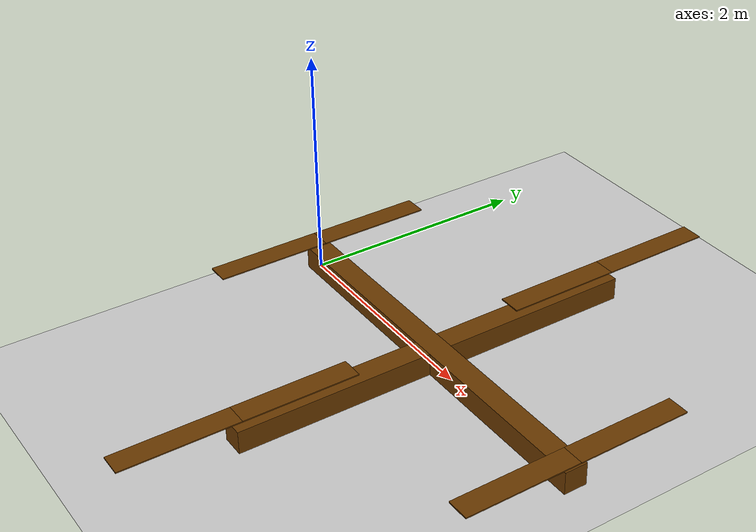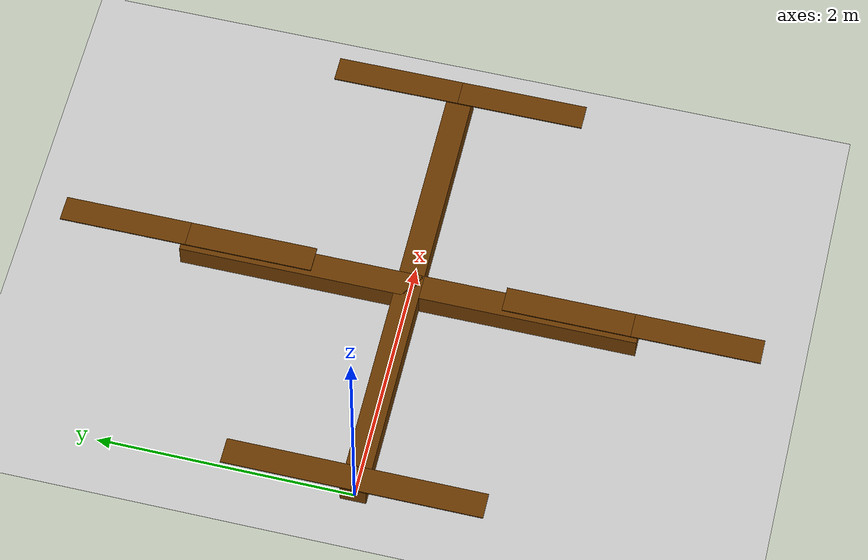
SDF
<?xml version="1.0" ?>
<sdf version="1.4">
  <world name="default">
    <physics type="ode">
      <gravity>0.0 0.0 -10.0</gravity>
      <ode>
        <solver>
          <type>quick</type>
          <iters>50</iters>
          <sor>0.8</sor>
        </solver>
        <constraints>
          <cfm>0.0</cfm>
          <erp>0.2</erp>
          <contact_max_correcting_vel>0.1</contact_max_correcting_vel>
          <contact_surface_layer>0.0</contact_surface_layer>
        </constraints>
      </ode>
      <real_time_update_rate>0</real_time_update_rate>
      <max_step_size>0.001</max_step_size>
    </physics>
    <include>
      <uri>model://sun</uri>
    </include>

    <model name="ground_plane">
      <static>true</static>
      <link name="link">
        <collision name="collision">
          <geometry>
            <plane>
              <normal>0 0 1</normal>
              <size>1000 1000</size>
            </plane>
          </geometry>
          <surface>
            <friction>
              <ode>
                <mu>1</mu>
                <mu2>1</mu2>
              </ode>
            </friction>
          </surface>
        </collision>
        <visual name="visual">
          <cast_shadows>false</cast_shadows>
          <geometry>
            <plane>
              <normal>0 0 1</normal>
              <size>1000 1000</size>
            </plane>
          </geometry>
          <material>
            <script>
              <uri>file://media/materials/scripts/gazebo.material</uri>
              <name>Gazebo/Grey</name>
            </script>
          </material>
        </visual>
      </link>
    </model>

    <model name="lift_drag_demo_model">
      <pose>0 0 0 0 0 0</pose>
      <static>false</static>
      <link name="body_1">
        <pose>1.75 0 0.1 0 0 0</pose>
        <inertial>
          <pose>0.0 0.0 0.0 0.0 0.0 0.0</pose>
          <inertia>
            <ixx>1.8</ixx>
            <ixy>0.0</ixy>
            <ixz>0.0</ixz>
            <iyy>10.8</iyy>
            <iyz>0.0</iyz>
            <izz>10.8</izz>
          </inertia>
          <mass>10.0</mass>
        </inertial>
        <collision name="collision">
          <geometry>
            <box>
              <size>3.6 0.2 0.2</size>
            </box>
          </geometry>
          <surface>
            <friction>
              <ode>
                <mu>0.1</mu>
                <mu2>0.1</mu2>
              </ode>
            </friction>
          </surface>
        </collision>
        <visual name="visual">
          <geometry>
            <box>
              <size>3.6 0.2 0.2</size>
            </box>
          </geometry>
          <material>
            <ambient>0.2 0.2 0.2 1.0</ambient>
            <diffuse>.421 0.225 0.0 1.0</diffuse>
          </material>
        </visual>
        <sensor name='imu_sensor' type='imu'>
          <always_on>1</always_on>
          <update_rate>1000</update_rate>
          <imu>
            <angular_velocity>
              <x>
                <noise type="gaussian">
                 <mean>0</mean>
                 <stddev>0.0002</stddev>
                 <bias_mean>7.5e-06</bias_mean>
                 <bias_stddev>8e-07</bias_stddev>
                </noise>
              </x>
              <y>
                <noise type="gaussian">
                 <mean>0</mean>
                 <stddev>0.0002</stddev>
                 <bias_mean>7.5e-06</bias_mean>
                 <bias_stddev>8e-07</bias_stddev>
                </noise>
              </y>
              <z>
                <noise type="gaussian">
                 <mean>0</mean>
                 <stddev>0.0002</stddev>
                 <bias_mean>7.5e-06</bias_mean>
                 <bias_stddev>8e-07</bias_stddev>
                </noise>
              </z>
            </angular_velocity>

            <linear_acceleration>
              <x>
                <noise type="gaussian">
                  <mean>0</mean>
                  <stddev>0.017</stddev>
                  <bias_mean>0.1</bias_mean>
                  <bias_stddev>0.001</bias_stddev>
                </noise>
              </x>
              <y>
                <noise type="gaussian">
                  <mean>0</mean>
                  <stddev>0.017</stddev>
                  <bias_mean>0.1</bias_mean>
                  <bias_stddev>0.001</bias_stddev>
                </noise>
              </y>
              <z>
                <noise type="gaussian">
                  <mean>0</mean>
                  <stddev>0.017</stddev>
                  <bias_mean>0.1</bias_mean>
                  <bias_stddev>0.001</bias_stddev>
                </noise>
              </z>
            </linear_acceleration>
          </imu>
          <pose>0 0 0 0 0 0</pose>
        </sensor>
      </link>
      <link name="rod_1">
        <pose>0 0 0.24 0 0 0</pose>
        <inertial>
          <pose>0.0 0.0 0 0.0 0.0 0.0</pose>
          <inertia>
            <ixx>0.012</ixx>
            <ixy>0.0</ixy>
            <ixz>0.0</ixz>
            <iyy>0.012</iyy>
            <iyz>0.0</iyz>
            <izz>0.0012</izz>
          </inertia>
          <mass>1.0</mass>
        </inertial>
        <collision name="collision">
          <geometry>
            <box>
              <size>0.02 0.02 0.08</size>
            </box>
          </geometry>
        </collision>
        <visual name="visual">
          <geometry>
            <box>
              <size>0.02 0.02 0.08</size>
            </box>
          </geometry>
          <material>
            <ambient>0.3 0.3 0.3 1.0</ambient>
            <diffuse>.421 0.225 0.0 1.0</diffuse>
          </material>
        </visual>
      </link>
      <link name="blade_1">
        <pose>0 0 0.28 0 0 0</pose>
        <inertial>
          <pose>0.0 0.25 0 0.0 0.0 0.0</pose>
          <inertia>
            <ixx>0.0000465</ixx>
            <ixy>0.0</ixy>
            <ixz>0.0</ixz>
            <iyy>0.0000006</iyy>
            <iyz>0.0</iyz>
            <izz>0.0000470</izz>
          </inertia>
          <mass>0.01</mass>
        </inertial>
        <collision name="collision">
          <pose>0.0 0.5 0 0.0 0.0 0.0</pose>
          <geometry>
            <box>
              <size>0.2 1.0 0.01</size>
            </box>
          </geometry>
        </collision>
        <visual name="visual">
          <pose>0.0 0.5 0 0.0 0.0 0.0</pose>
          <geometry>
            <box>
              <size>0.2 1.0 0.01</size>
            </box>
          </geometry>
          <material>
            <ambient>0.5 0.2 0.2 1.0</ambient>
            <diffuse>.421 0.225 0.0 1.0</diffuse>
          </material>
        </visual>
      </link>
      <link name="blade_2">
        <pose>0 0 0.28 0 0 3.141593</pose>
        <inertial>
          <pose>0.0 0.25 0 0.0 0.0 0.0</pose>
          <inertia>
            <ixx>0.0000465</ixx>
            <ixy>0.0</ixy>
            <ixz>0.0</ixz>
            <iyy>0.0000006</iyy>
            <iyz>0.0</iyz>
            <izz>0.0000470</izz>
          </inertia>
          <mass>0.01</mass>
        </inertial>
        <collision name="collision">
          <pose>0.0 0.5 0 0.0 0.0 0.0</pose>
          <geometry>
            <box>
              <size>0.2 1.0 0.01</size>
            </box>
          </geometry>
        </collision>
        <visual name="visual">
          <pose>0.0 0.5 0 0.0 0.0 0</pose>
          <geometry>
            <box>
              <size>0.2 1.0 0.01</size>
            </box>
          </geometry>
          <material>
            <ambient>0.2 0.5 0.2 1.0</ambient>
            <diffuse>.421 0.225 0.0 1.0</diffuse>
          </material>
        </visual>
      </link>
      <joint name="rod_1_joint" type="revolute">
        <parent>body_1</parent>
        <child>rod_1</child>
        <pose>0.0 0.0 0.0 0.0 0.0 0.0</pose>
        <axis>
          <limit>
            <lower>-1e16</lower>
            <upper>1e16</upper>
          </limit>
          <xyz>0.0 0.0 -1.0</xyz>
          <dynamics>
            <damping>0.0001</damping>
          </dynamics>
        </axis>
        <physics>
          <ode>
            <cfm_damping>1</cfm_damping>
          </ode>
        </physics>
      </joint>
      <joint name="blade_1_joint" type="revolute">
        <parent>rod_1</parent>
        <child>blade_1</child>
        <pose>0.0 0.0 0.0 0.0 0.0 0.0</pose>
        <axis>
          <limit>
            <lower>-0.0</lower>
            <upper>0.0</upper>
          </limit>
          <xyz>1.0 0.0 0.0</xyz>
          <dynamics>
            <damping>1.000000</damping>
          </dynamics>
        </axis>
        <physics>
          <ode>
            <limit>
              <cfm>0.004</cfm>
              <erp>0.2</erp>
            </limit>
            <cfm_damping>1</cfm_damping>
          </ode>
        </physics>
      </joint>
      <joint name="blade_2_joint" type="revolute">
        <parent>rod_1</parent>
        <child>blade_2</child>
        <pose>0.0 0.0 0.0 0.0 0.0 0.0</pose>
        <axis>
          <limit>
            <lower>-0.0</lower>
            <upper>0.0</upper>
          </limit>
          <xyz>-1.0 0.0 0.0</xyz>
          <dynamics>
            <damping>1.000000</damping>
          </dynamics>
        </axis>
        <physics>
          <ode>
            <limit>
              <cfm>0.004</cfm>
              <erp>0.2</erp>
            </limit>
            <cfm_damping>1</cfm_damping>
          </ode>
        </physics>
      </joint>

      <link name="rod_2">
        <pose>3.5 0 0.24 0 0 0</pose>
        <inertial>
          <pose>0.0 0.0 0 0.0 0.0 0.0</pose>
          <inertia>
            <ixx>0.012</ixx>
            <ixy>0.0</ixy>
            <ixz>0.0</ixz>
            <iyy>0.012</iyy>
            <iyz>0.0</iyz>
            <izz>0.0012</izz>
          </inertia>
          <mass>1.0</mass>
        </inertial>
        <collision name="collision">
          <geometry>
            <box>
              <size>0.02 0.02 0.08</size>
            </box>
          </geometry>
        </collision>
        <visual name="visual">
          <geometry>
            <box>
              <size>0.02 0.02 0.08</size>
            </box>
          </geometry>
          <material>
            <ambient>0.3 0.3 0.3 1.0</ambient>
            <diffuse>.421 0.225 0.0 1.0</diffuse>
          </material>
        </visual>
      </link>
      <link name="blade_3">
        <pose>3.5 0 0.28 0 0 0</pose>
        <inertial>
          <pose>0.0 0.25 0 0.0 0.0 0.0</pose>
          <inertia>
            <ixx>0.0000465</ixx>
            <ixy>0.0</ixy>
            <ixz>0.0</ixz>
            <iyy>0.0000006</iyy>
            <iyz>0.0</iyz>
            <izz>0.0000470</izz>
          </inertia>
          <mass>0.01</mass>
        </inertial>
        <collision name="collision">
          <pose>0.0 0.5 0 0.0 0.0 0.0</pose>
          <geometry>
            <box>
              <size>0.2 1.0 0.01</size>
            </box>
          </geometry>
        </collision>
        <visual name="visual">
          <pose>0.0 0.5 0 0.0 0.0 0.0</pose>
          <geometry>
            <box>
              <size>0.2 1.0 0.01</size>
            </box>
          </geometry>
          <material>
            <ambient>0.5 0.2 0.2 1.0</ambient>
            <diffuse>.421 0.225 0.0 1.0</diffuse>
          </material>
        </visual>
      </link>
      <link name="blade_4">
        <pose>3.5 0 0.28 0 0 3.141593</pose>
        <inertial>
          <pose>0.0 0.25 0 0.0 0.0 0.0</pose>
          <inertia>
            <ixx>0.0000465</ixx>
            <ixy>0.0</ixy>
            <ixz>0.0</ixz>
            <iyy>0.0000006</iyy>
            <iyz>0.0</iyz>
            <izz>0.0000470</izz>
          </inertia>
          <mass>0.01</mass>
        </inertial>
        <collision name="collision">
          <pose>0.0 0.5 0 0.0 0.0 0.0</pose>
          <geometry>
            <box>
              <size>0.2 1.0 0.01</size>
            </box>
          </geometry>
        </collision>
        <visual name="visual">
          <pose>0.0 0.5 0 0.0 0.0 0</pose>
          <geometry>
            <box>
              <size>0.2 1.0 0.01</size>
            </box>
          </geometry>
          <material>
            <ambient>0.2 0.5 0.2 1.0</ambient>
            <diffuse>.421 0.225 0.0 1.0</diffuse>
          </material>
        </visual>
      </link>
      <joint name="rod_2_joint" type="revolute">
        <parent>body_1</parent>
        <child>rod_2</child>
        <pose>0.0 0.0 0.0 0.0 0.0 0.0</pose>
        <axis>
          <limit>
            <lower>-1e16</lower>
            <upper>1e16</upper>
          </limit>
          <xyz>0.0 0.0 1.0</xyz>
          <dynamics>
            <damping>0.0001</damping>
          </dynamics>
        </axis>
        <physics>
          <ode>
            <cfm_damping>1</cfm_damping>
          </ode>
        </physics>
      </joint>
      <joint name="blade_3_joint" type="revolute">
        <parent>rod_2</parent>
        <child>blade_3</child>
        <pose>0.0 0.0 0.0 0.0 0.0 0.0</pose>
        <axis>
          <limit>
            <lower>-0.0</lower>
            <upper>0.0</upper>
          </limit>
          <xyz>1.0 0.0 0.0</xyz>
          <dynamics>
            <damping>1.000000</damping>
          </dynamics>
        </axis>
        <physics>
          <ode>
            <limit>
              <cfm>0.004</cfm>
              <erp>0.2</erp>
            </limit>
            <cfm_damping>1</cfm_damping>
          </ode>
        </physics>
      </joint>
      <joint name="blade_4_joint" type="revolute">
        <parent>rod_2</parent>
        <child>blade_4</child>
        <pose>0.0 0.0 0.0 0.0 0.0 0.0</pose>
        <axis>
          <limit>
            <lower>-0.0</lower>
            <upper>0.0</upper>
          </limit>
          <xyz>1.0 0.0 0.0</xyz>
          <dynamics>
            <damping>1.000000</damping>
          </dynamics>
        </axis>
        <physics>
          <ode>
            <limit>
              <cfm>0.004</cfm>
              <erp>0.2</erp>
            </limit>
            <cfm_damping>1</cfm_damping>
          </ode>
        </physics>
      </joint>
      <joint name="gear_joint_1" type="gearbox">
          <parent>rod_1</parent>
          <child>rod_2</child>
          <gearbox_ratio>1.0</gearbox_ratio>
          <gearbox_reference_body>body_1</gearbox_reference_body>
          <axis>
            <xyz>0.000000 0.000000 1.000000</xyz>
          </axis>
          <axis2>
            <xyz>0.000000 0.000000 1.000000</xyz>
          </axis2>
      </joint>

      <plugin name="gazebo_blade_1" filename="libLiftDragPlugin.so">
        <a0>0.1</a0>
        <cla>0.100</cla>
        <cda>0.01</cda>
        <cma>0.00</cma>
        <alpha_stall>0.2</alpha_stall>
        <cla_stall>-0.2</cla_stall>
        <cda_stall>1.0</cda_stall>
        <cma_stall>0.0</cma_stall>
        <cp>0.0 0.5 0</cp>
        <area>0.2</area>
        <air_density>1.2041</air_density>
        <forward>1 0 0</forward>
        <upward>0 0 1</upward>
        <link_name>lift_drag_demo_model::blade_1</link_name>
      </plugin>
      <plugin name="gazebo_blade_2" filename="libLiftDragPlugin.so">
        <a0>0.1</a0>
        <cla>0.100</cla>
        <cda>0.01</cda>
        <cma>0.00</cma>
        <alpha_stall>0.2</alpha_stall>
        <cla_stall>-0.2</cla_stall>
        <cda_stall>1.0</cda_stall>
        <cma_stall>0.0</cma_stall>
        <cp>0.0 0.5 0</cp>
        <area>0.2</area>
        <air_density>1.2041</air_density>
        <forward>1 0 0</forward>
        <upward>0 0 1</upward>
        <link_name>lift_drag_demo_model::blade_2</link_name>
      </plugin>
      <plugin name="gazebo_blade_3" filename="libLiftDragPlugin.so">
        <a0>0.1</a0>
        <cla>0.100</cla>
        <cda>0.01</cda>
        <cma>0.00</cma>
        <alpha_stall>0.2</alpha_stall>
        <cla_stall>-0.2</cla_stall>
        <cda_stall>1.0</cda_stall>
        <cma_stall>0.0</cma_stall>
        <cp>0.0 0.5 0</cp>
        <area>0.2</area>
        <air_density>1.2041</air_density>
        <forward>-1 0 0</forward>
        <upward>0 0 1</upward>
        <link_name>lift_drag_demo_model::blade_3</link_name>
      </plugin>
      <plugin name="gazebo_blade_4" filename="libLiftDragPlugin.so">
        <a0>0.1</a0>
        <cla>0.100</cla>
        <cda>0.01</cda>
        <cma>0.00</cma>
        <alpha_stall>0.2</alpha_stall>
        <cla_stall>-0.2</cla_stall>
        <cda_stall>1.0</cda_stall>
        <cma_stall>0.0</cma_stall>
        <cp>0.0 0.5 0</cp>
        <area>0.2</area>
        <air_density>1.2041</air_density>
        <forward>-1 0 0</forward>
        <upward>0 0 1</upward>
        <link_name>lift_drag_demo_model::blade_4</link_name>
      </plugin>

      <link name="body_2">
        <pose>1.75 0 0.1 0 0 0</pose>
        <inertial>
          <pose>0.0 0.0 0.0 0.0 0.0 0.0</pose>
          <inertia>
            <ixx>10.8</ixx>
            <ixy>0.0</ixy>
            <ixz>0.0</ixz>
            <iyy>1.8</iyy>
            <iyz>0.0</iyz>
            <izz>10.8</izz>
          </inertia>
          <mass>10.0</mass>
        </inertial>
        <collision name="collision">
          <geometry>
            <box>
              <size>0.2 3.6 0.2</size>
            </box>
          </geometry>
          <surface>
            <friction>
              <ode>
                <mu>0.1</mu>
                <mu2>0.1</mu2>
              </ode>
            </friction>
          </surface>
        </collision>
        <visual name="visual">
          <geometry>
            <box>
              <size>0.2 3.6 0.2</size>
            </box>
          </geometry>
          <material>
            <ambient>0.2 0.2 0.2 1.0</ambient>
            <diffuse>.421 0.225 0.0 1.0</diffuse>
          </material>
        </visual>
      </link>
      <link name="rod_3">
        <pose>1.75 -1.75 0.24 0 0 0</pose>
        <inertial>
          <pose>0.0 0.0 0 0.0 0.0 0.0</pose>
          <inertia>
            <ixx>0.012</ixx>
            <ixy>0.0</ixy>
            <ixz>0.0</ixz>
            <iyy>0.012</iyy>
            <iyz>0.0</iyz>
            <izz>0.0012</izz>
          </inertia>
          <mass>1.0</mass>
        </inertial>
        <collision name="collision">
          <geometry>
            <box>
              <size>0.02 0.02 0.08</size>
            </box>
          </geometry>
        </collision>
        <visual name="visual">
          <geometry>
            <box>
              <size>0.02 0.02 0.08</size>
            </box>
          </geometry>
          <material>
            <ambient>0.3 0.3 0.3 1.0</ambient>
            <diffuse>.421 0.225 0.0 1.0</diffuse>
          </material>
        </visual>
      </link>
      <link name="blade_5">
        <pose>1.75 -1.75 0.28 0 0 0</pose>
        <inertial>
          <pose>0.0 0.25 0 0.0 0.0 0.0</pose>
          <inertia>
            <ixx>0.0000465</ixx>
            <ixy>0.0</ixy>
            <ixz>0.0</ixz>
            <iyy>0.0000006</iyy>
            <iyz>0.0</iyz>
            <izz>0.0000470</izz>
          </inertia>
          <mass>0.01</mass>
        </inertial>
        <collision name="collision">
          <pose>0.0 0.5 0 0.0 0.0 0.0</pose>
          <geometry>
            <box>
              <size>0.2 1.0 0.01</size>
            </box>
          </geometry>
        </collision>
        <visual name="visual">
          <pose>0.0 0.5 0 0.0 0.0 0.0</pose>
          <geometry>
            <box>
              <size>0.2 1.0 0.01</size>
            </box>
          </geometry>
          <material>
            <ambient>0.5 0.2 0.2 1.0</ambient>
            <diffuse>.421 0.225 0.0 1.0</diffuse>
          </material>
        </visual>
      </link>
      <link name="blade_6">
        <pose>1.75 -1.75 0.28 0 0 3.141593</pose>
        <inertial>
          <pose>0.0 0.25 0 0.0 0.0 0.0</pose>
          <inertia>
            <ixx>0.0000465</ixx>
            <ixy>0.0</ixy>
            <ixz>0.0</ixz>
            <iyy>0.0000006</iyy>
            <iyz>0.0</iyz>
            <izz>0.0000470</izz>
          </inertia>
          <mass>0.01</mass>
        </inertial>
        <collision name="collision">
          <pose>0.0 0.5 0 0.0 0.0 0.0</pose>
          <geometry>
            <box>
              <size>0.2 1.0 0.01</size>
            </box>
          </geometry>
        </collision>
        <visual name="visual">
          <pose>0.0 0.5 0 0.0 0.0 0</pose>
          <geometry>
            <box>
              <size>0.2 1.0 0.01</size>
            </box>
          </geometry>
          <material>
            <ambient>0.2 0.5 0.2 1.0</ambient>
            <diffuse>.421 0.225 0.0 1.0</diffuse>
          </material>
        </visual>
      </link>
      <joint name="rod_3_joint" type="revolute">
        <parent>body_2</parent>
        <child>rod_3</child>
        <pose>0.0 0.0 0.0 0.0 0.0 0.0</pose>
        <axis>
          <limit>
            <lower>-1e16</lower>
            <upper>1e16</upper>
          </limit>
          <xyz>0.0 0.0 1.0</xyz>
          <dynamics>
            <damping>0.0001</damping>
          </dynamics>
        </axis>
        <physics>
          <ode>
            <cfm_damping>1</cfm_damping>
          </ode>
        </physics>
      </joint>
      <joint name="blade_5_joint" type="revolute">
        <parent>rod_3</parent>
        <child>blade_5</child>
        <pose>0.0 0.0 0.0 0.0 0.0 0.0</pose>
        <axis>
          <limit>
            <lower>-0.0</lower>
            <upper>0.0</upper>
          </limit>
          <xyz>1.0 0.0 0.0</xyz>
          <dynamics>
            <damping>1.000000</damping>
          </dynamics>
        </axis>
        <physics>
          <ode>
            <limit>
              <cfm>0.004</cfm>
              <erp>0.2</erp>
            </limit>
            <cfm_damping>1</cfm_damping>
          </ode>
        </physics>
      </joint>
      <joint name="blade_6_joint" type="revolute">
        <parent>rod_3</parent>
        <child>blade_6</child>
        <pose>0.0 0.0 0.0 0.0 0.0 0.0</pose>
        <axis>
          <limit>
            <lower>-0.0</lower>
            <upper>0.0</upper>
          </limit>
          <xyz>-1.0 0.0 0.0</xyz>
          <dynamics>
            <damping>1.000000</damping>
          </dynamics>
        </axis>
        <physics>
          <ode>
            <limit>
              <cfm>0.004</cfm>
              <erp>0.2</erp>
            </limit>
            <cfm_damping>1</cfm_damping>
          </ode>
        </physics>
      </joint>

      <link name="rod_4">
        <pose>1.75 1.75 0.24 0 0 0</pose>
        <inertial>
          <pose>0.0 0.0 0 0.0 0.0 0.0</pose>
          <inertia>
            <ixx>0.012</ixx>
            <ixy>0.0</ixy>
            <ixz>0.0</ixz>
            <iyy>0.012</iyy>
            <iyz>0.0</iyz>
            <izz>0.0012</izz>
          </inertia>
          <mass>1.0</mass>
        </inertial>
        <collision name="collision">
          <geometry>
            <box>
              <size>0.02 0.02 0.08</size>
            </box>
          </geometry>
        </collision>
        <visual name="visual">
          <geometry>
            <box>
              <size>0.02 0.02 0.08</size>
            </box>
          </geometry>
          <material>
            <ambient>0.3 0.3 0.3 1.0</ambient>
            <diffuse>.421 0.225 0.0 1.0</diffuse>
          </material>
        </visual>
      </link>
      <link name="blade_7">
        <pose>1.75 1.75 0.28 0 0 0</pose>
        <inertial>
          <pose>0.0 0.25 0 0.0 0.0 0.0</pose>
          <inertia>
            <ixx>0.0000465</ixx>
            <ixy>0.0</ixy>
            <ixz>0.0</ixz>
            <iyy>0.0000006</iyy>
            <iyz>0.0</iyz>
            <izz>0.0000470</izz>
          </inertia>
          <mass>0.01</mass>
        </inertial>
        <collision name="collision">
          <pose>0.0 0.5 0 0.0 0.0 0.0</pose>
          <geometry>
            <box>
              <size>0.2 1.0 0.01</size>
            </box>
          </geometry>
        </collision>
        <visual name="visual">
          <pose>0.0 0.5 0 0.0 0.0 0.0</pose>
          <geometry>
            <box>
              <size>0.2 1.0 0.01</size>
            </box>
          </geometry>
          <material>
            <ambient>0.5 0.2 0.2 1.0</ambient>
            <diffuse>.421 0.225 0.0 1.0</diffuse>
          </material>
        </visual>
      </link>
      <link name="blade_8">
        <pose>1.75 1.75 0.28 0 0 3.141593</pose>
        <inertial>
          <pose>0.0 0.25 0 0.0 0.0 0.0</pose>
          <inertia>
            <ixx>0.0000465</ixx>
            <ixy>0.0</ixy>
            <ixz>0.0</ixz>
            <iyy>0.0000006</iyy>
            <iyz>0.0</iyz>
            <izz>0.0000470</izz>
          </inertia>
          <mass>0.01</mass>
        </inertial>
        <collision name="collision">
          <pose>0.0 0.5 0 0.0 0.0 0.0</pose>
          <geometry>
            <box>
              <size>0.2 1.0 0.01</size>
            </box>
          </geometry>
        </collision>
        <visual name="visual">
          <pose>0.0 0.5 0 0.0 0.0 0</pose>
          <geometry>
            <box>
              <size>0.2 1.0 0.01</size>
            </box>
          </geometry>
          <material>
            <ambient>0.2 0.5 0.2 1.0</ambient>
            <diffuse>.421 0.225 0.0 1.0</diffuse>
          </material>
        </visual>
      </link>
      <joint name="body_joint" type="revolute">
        <parent>body_1</parent>
        <child>body_2</child>
        <pose>0.0 0.0 0.0 0.0 0.0 0.0</pose>
        <axis>
          <limit>
            <lower>0</lower>
            <upper>0</upper>
          </limit>
          <xyz>0.0 0.0 1.0</xyz>
          <dynamics>
            <damping>0.0001</damping>
          </dynamics>
        </axis>
        <physics>
          <ode>
            <cfm_damping>1</cfm_damping>
          </ode>
        </physics>
      </joint>
      <joint name="rod_4_joint" type="revolute">
        <parent>body_2</parent>
        <child>rod_4</child>
        <pose>0.0 0.0 0.0 0.0 0.0 0.0</pose>
        <axis>
          <limit>
            <lower>-1e16</lower>
            <upper>1e16</upper>
          </limit>
          <xyz>0.0 0.0 1.0</xyz>
          <dynamics>
            <damping>0.0001</damping>
          </dynamics>
        </axis>
        <physics>
          <ode>
            <cfm_damping>1</cfm_damping>
          </ode>
        </physics>
      </joint>
      <joint name="blade_7_joint" type="revolute">
        <parent>rod_4</parent>
        <child>blade_7</child>
        <pose>0.0 0.0 0.0 0.0 0.0 0.0</pose>
        <axis>
          <limit>
            <lower>-0.0</lower>
            <upper>0.0</upper>
          </limit>
          <xyz>1.0 0.0 0.0</xyz>
          <dynamics>
            <damping>1.000000</damping>
          </dynamics>
        </axis>
        <physics>
          <ode>
            <limit>
              <cfm>0.004</cfm>
              <erp>0.2</erp>
            </limit>
            <cfm_damping>1</cfm_damping>
          </ode>
        </physics>
      </joint>
      <joint name="blade_8_joint" type="revolute">
        <parent>rod_4</parent>
        <child>blade_8</child>
        <pose>0.0 0.0 0.0 0.0 0.0 0.0</pose>
        <axis>
          <limit>
            <lower>-0.0</lower>
            <upper>0.0</upper>
          </limit>
          <xyz>-1.0 0.0 0.0</xyz>
          <dynamics>
            <damping>1.000000</damping>
          </dynamics>
        </axis>
        <physics>
          <ode>
            <limit>
              <cfm>0.004</cfm>
              <erp>0.2</erp>
            </limit>
            <cfm_damping>1</cfm_damping>
          </ode>
        </physics>
      </joint>
      <joint name="gear_joint_2" type="gearbox">
          <parent>rod_3</parent>
          <child>rod_4</child>
          <gearbox_ratio>-1.0</gearbox_ratio>
          <gearbox_reference_body>body_2</gearbox_reference_body>
          <axis>
            <xyz>0.000000 0.000000 1.000000</xyz>
          </axis>
          <axis2>
            <xyz>0.000000 0.000000 1.000000</xyz>
          </axis2>
      </joint>

      <plugin name="gazebo_blade_5" filename="libLiftDragPlugin.so">
        <a0>0.1</a0>
        <cla>0.100</cla>
        <cda>0.01</cda>
        <cma>0.00</cma>
        <alpha_stall>0.2</alpha_stall>
        <cla_stall>-0.2</cla_stall>
        <cda_stall>1.0</cda_stall>
        <cma_stall>0.0</cma_stall>
        <cp>0.0 0.5 0</cp>
        <area>0.2</area>
        <air_density>1.2041</air_density>
        <forward>-1 0 0</forward>
        <upward>0 0 1</upward>
        <link_name>lift_drag_demo_model::blade_5</link_name>
      </plugin>
      <plugin name="gazebo_blade_6" filename="libLiftDragPlugin.so">
        <a0>0.1</a0>
        <cla>0.100</cla>
        <cda>0.01</cda>
        <cma>0.00</cma>
        <alpha_stall>0.2</alpha_stall>
        <cla_stall>-0.2</cla_stall>
        <cda_stall>1.0</cda_stall>
        <cma_stall>0.0</cma_stall>
        <cp>0.0 0.5 0</cp>
        <area>0.2</area>
        <air_density>1.2041</air_density>
        <forward>-1 0 0</forward>
        <upward>0 0 1</upward>
        <link_name>lift_drag_demo_model::blade_6</link_name>
      </plugin>
      <plugin name="gazebo_blade_7" filename="libLiftDragPlugin.so">
        <a0>0.1</a0>
        <cla>0.100</cla>
        <cda>0.01</cda>
        <cma>0.00</cma>
        <alpha_stall>0.2</alpha_stall>
        <cla_stall>-0.2</cla_stall>
        <cda_stall>1.0</cda_stall>
        <cma_stall>0.0</cma_stall>
        <cp>0.0 0.5 0</cp>
        <area>0.2</area>
        <air_density>1.2041</air_density>
        <forward>-1 0 0</forward>
        <upward>0 0 1</upward>
        <link_name>lift_drag_demo_model::blade_7</link_name>
      </plugin>
      <plugin name="gazebo_blade_8" filename="libLiftDragPlugin.so">
        <a0>0.1</a0>
        <cla>0.100</cla>
        <cda>0.01</cda>
        <cma>0.00</cma>
        <alpha_stall>0.2</alpha_stall>
        <cla_stall>-0.2</cla_stall>
        <cda_stall>1.0</cda_stall>
        <cma_stall>0.0</cma_stall>
        <cp>0.0 0.5 0</cp>
        <area>0.2</area>
        <air_density>1.2041</air_density>
        <forward>-1 0 0</forward>
        <upward>0 0 1</upward>
        <link_name>lift_drag_demo_model::blade_8</link_name>
      </plugin>

    </model>
  </world>
</sdf>
